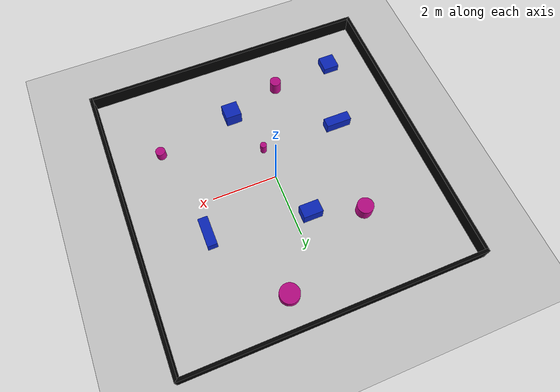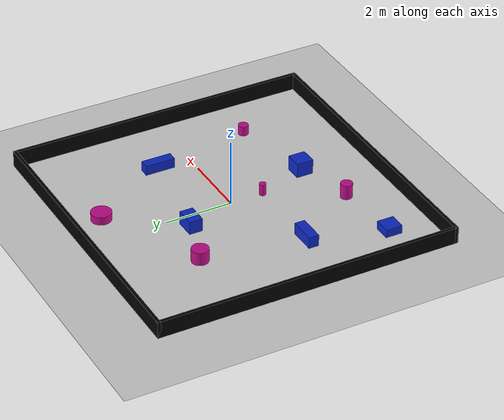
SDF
<sdf version="1.6">
 <world name="arena_final_project">
  <physics name="1ms" type="ignored">
   <max_step_size>0.001</max_step_size>
   <real_time_factor>1.0</real_time_factor>
  </physics>
  <plugin filename="gz-sim-physics-system" name="gz::sim::systems::Physics"/>
  <plugin filename="gz-sim-user-commands-system" name="gz::sim::systems::UserCommands"/>
  <plugin filename="gz-sim-scene-broadcaster-system" name="gz::sim::systems::SceneBroadcaster"/>
  <plugin filename="gz-sim-sensors-system" name="gz::sim::systems::Sensors">
   <render_engine>ogre2</render_engine>
  </plugin>
  <plugin filename="gz-sim-imu-system" name="gz::sim::systems::Imu"/>
  <light type="directional" name="sun">
   <pose>0 0 10 0 0 0</pose>
   <diffuse>0.8 0.8 0.8 1</diffuse>
   <specular>0.2 0.2 0.2 1</specular>
   <direction>-0.5 0.1 -0.9</direction>
  </light>
  <model name="ground_plane">
   <static>true</static>
   <link name="link">
    <collision name="collision">
     <geometry><plane><normal>0 0 1</normal><size>9 9</size></plane></geometry>
    </collision>
    <visual name="visual">
     <geometry><plane><normal>0 0 1</normal><size>9 9</size></plane></geometry>
     <material><ambient>0.8 0.8 0.8 1</ambient><diffuse>0.8 0.8 0.8 1</diffuse></material>
    </visual>
   </link>
  </model>
  <model name="wall_north">
   <static>true</static>
   <pose>0 4.5 0.25 0 0 0</pose>
   <link name="link">
    <collision name="collision"><geometry><box><size>9.1 0.1 0.5</size></box></geometry></collision>
    <visual name="visual">
     <geometry><box><size>9.1 0.1 0.5</size></box></geometry>
     <material><ambient>0 0 0 1</ambient><diffuse>0 0 0 1</diffuse></material>
    </visual>
   </link>
  </model>
  <model name="wall_south">
   <static>true</static>
   <pose>0 -4.5 0.25 0 0 0</pose>
   <link name="link">
    <collision name="collision"><geometry><box><size>9.1 0.1 0.5</size></box></geometry></collision>
    <visual name="visual">
     <geometry><box><size>9.1 0.1 0.5</size></box></geometry>
     <material><ambient>0 0 0 1</ambient><diffuse>0 0 0 1</diffuse></material>
    </visual>
   </link>
  </model>
  <model name="wall_east">
   <static>true</static>
   <pose>4.5 0 0.25 0 0 0</pose>
   <link name="link">
    <collision name="collision"><geometry><box><size>0.1 9.1 0.5</size></box></geometry></collision>
    <visual name="visual">
     <geometry><box><size>0.1 9.1 0.5</size></box></geometry>
     <material><ambient>0 0 0 1</ambient><diffuse>0 0 0 1</diffuse></material>
    </visual>
   </link>
  </model>
  <model name="wall_west">
   <static>true</static>
   <pose>-4.5 0 0.25 0 0 0</pose>
   <link name="link">
    <collision name="collision"><geometry><box><size>0.1 9.1 0.5</size></box></geometry></collision>
    <visual name="visual">
     <geometry><box><size>0.1 9.1 0.5</size></box></geometry>
     <material><ambient>0 0 0 1</ambient><diffuse>0 0 0 1</diffuse></material>
    </visual>
   </link>
  </model>
  <model name="cylinder_a">
   <static>true</static>
   <pose>-2 2 0.2 0 0 0</pose>
   <link name="link">
    <collision name="collision">
     <geometry><cylinder><radius>0.25</radius><length>0.4</length></cylinder></geometry>
    </collision>
    <visual name="visual">
     <geometry><cylinder><radius>0.25</radius><length>0.4</length></cylinder></geometry>
     <material><ambient>0.74 0.04 0.53 1</ambient><diffuse>0.74 0.04 0.53 1</diffuse></material>
    </visual>
   </link>
  </model>
  <model name="cylinder_b">
   <static>true</static>
   <pose>3 -2 0.15 0 0 0</pose>
   <link name="link">
    <collision name="collision">
     <geometry><cylinder><radius>0.15</radius><length>0.3</length></cylinder></geometry>
    </collision>
    <visual name="visual">
     <geometry><cylinder><radius>0.15</radius><length>0.3</length></cylinder></geometry>
     <material><ambient>0.74 0.04 0.53 1</ambient><diffuse>0.74 0.04 0.53 1</diffuse></material>
    </visual>
   </link>
  </model>
  <model name="cylinder_c">
   <static>true</static>
   <pose>1 3.5 0.125 0 0 0</pose>
   <link name="link">
    <collision name="collision">
     <geometry><cylinder><radius>0.3</radius><length>0.25</length></cylinder></geometry>
    </collision>
    <visual name="visual">
     <geometry><cylinder><radius>0.3</radius><length>0.25</length></cylinder></geometry>
     <material><ambient>0.74 0.04 0.53 1</ambient><diffuse>0.74 0.04 0.53 1</diffuse></material>
    </visual>
   </link>
  </model>
  <model name="cylinder_d">
   <static>true</static>
   <pose>0 -1 0.175 0 0 0</pose>
   <link name="link">
    <collision name="collision">
     <geometry><cylinder><radius>0.1</radius><length>0.35</length></cylinder></geometry>
    </collision>
    <visual name="visual">
     <geometry><cylinder><radius>0.1</radius><length>0.35</length></cylinder></geometry>
     <material><ambient>0.74 0.04 0.53 1</ambient><diffuse>0.74 0.04 0.53 1</diffuse></material>
    </visual>
   </link>
  </model>
  <model name="cylinder_e">
   <static>true</static>
   <pose>-1.2 -3.0 0.225 0 0 0</pose>
   <link name="link">
    <collision name="collision">
     <geometry><cylinder><radius>0.175</radius><length>0.45</length></cylinder></geometry>
    </collision>
    <visual name="visual">
     <geometry><cylinder><radius>0.175</radius><length>0.45</length></cylinder></geometry>
     <material><ambient>0.74 0.04 0.53 1</ambient><diffuse>0.74 0.04 0.53 1</diffuse></material>
    </visual>
   </link>
  </model>
  <model name="block_a">
   <static>true</static>
   <pose>-2.5 -1.0 0.175 0 0 0</pose>
   <link name="link">
    <collision name="collision"><geometry><box><size>0.8 0.3 0.35</size></box></geometry></collision>
    <visual name="visual">
     <geometry><box><size>0.8 0.3 0.35</size></box></geometry>
     <material><ambient>0.04 0.15 0.75 1</ambient><diffuse>0.04 0.15 0.75 1</diffuse></material>
    </visual>
   </link>
  </model>
  <model name="block_b">
   <static>true</static>
   <pose>0.5 -2.5 0.225 0 0 0</pose>
   <link name="link">
    <collision name="collision"><geometry><box><size>0.5 0.5 0.45</size></box></geometry></collision>
    <visual name="visual">
     <geometry><box><size>0.5 0.5 0.45</size></box></geometry>
     <material><ambient>0.04 0.15 0.75 1</ambient><diffuse>0.04 0.15 0.75 1</diffuse></material>
    </visual>
   </link>
  </model>
  <model name="block_c">
   <static>true</static>
   <pose>2.5 1.0 0.15 0 0 0</pose>
   <link name="link">
    <collision name="collision"><geometry><box><size>0.3 0.9 0.3</size></box></geometry></collision>
    <visual name="visual">
     <geometry><box><size>0.3 0.9 0.3</size></box></geometry>
     <material><ambient>0.04 0.15 0.75 1</ambient><diffuse>0.04 0.15 0.75 1</diffuse></material>
    </visual>
   </link>
  </model>
  <model name="block_d">
   <static>true</static>
   <pose>-0.5 1.5 0.2 0 0 0</pose>
   <link name="link">
    <collision name="collision"><geometry><box><size>0.6 0.4 0.4</size></box></geometry></collision>
    <visual name="visual">
     <geometry><box><size>0.6 0.4 0.4</size></box></geometry>
     <material><ambient>0.04 0.15 0.75 1</ambient><diffuse>0.04 0.15 0.75 1</diffuse></material>
    </visual>
   </link>
  </model>
  <model name="block_e">
   <static>true</static>
   <pose>-3.2 -3.2 0.125 0 0 0</pose>
   <link name="link">
    <collision name="collision"><geometry><box><size>0.5 0.5 0.25</size></box></geometry></collision>
    <visual name="visual">
     <geometry><box><size>0.5 0.5 0.25</size></box></geometry>
     <material><ambient>0.04 0.15 0.75 1</ambient><diffuse>0.04 0.15 0.75 1</diffuse></material>
    </visual>
   </link>
  </model>
 </world>
</sdf>
